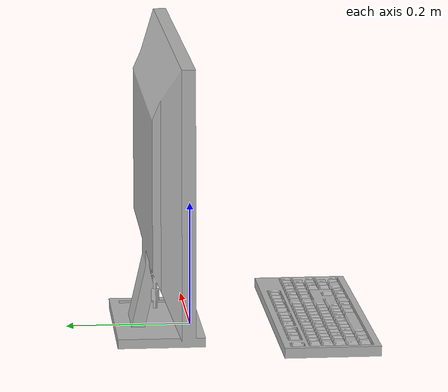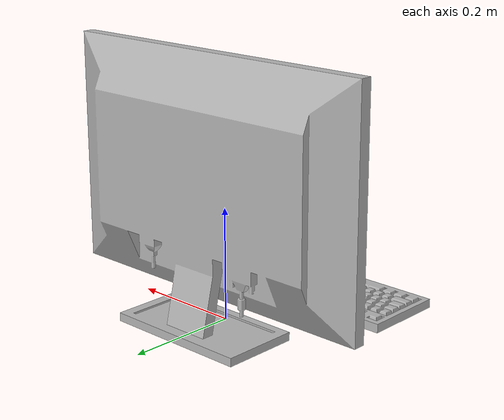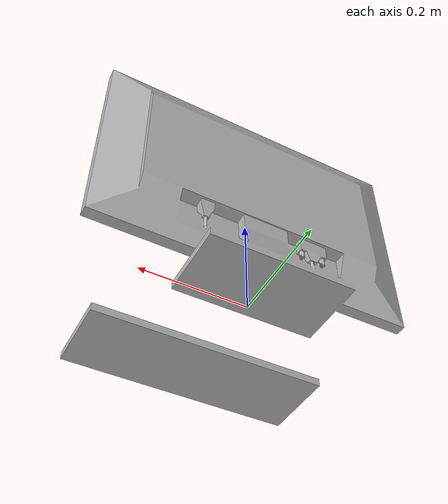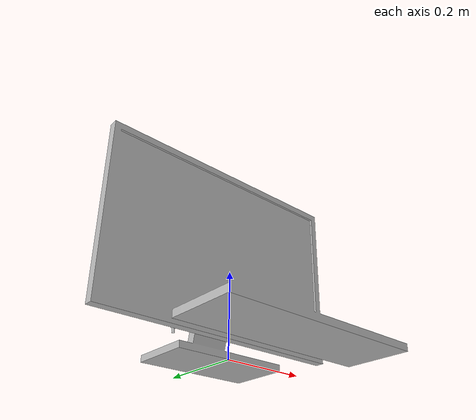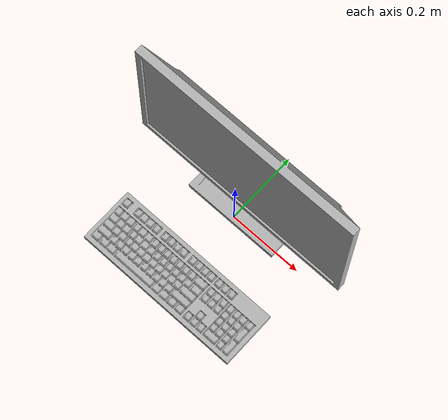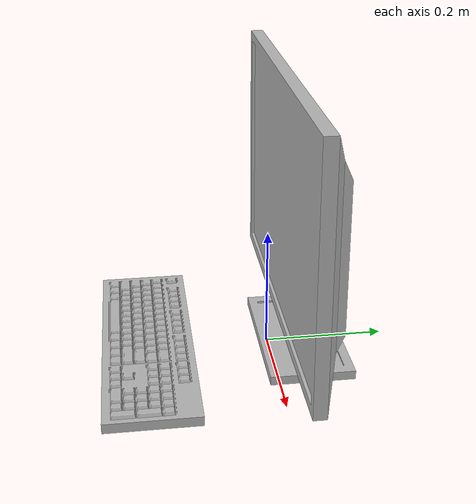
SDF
<?xml version='1.0'?>
<sdf version="1.4">
<model name="lcd_monitor">
  <pose>0 0 0  0 0 0</pose>
  <static>true</static>
    <link name="link">

      <collision name="collision">
        <geometry>
          <mesh><uri>model://lcd_monitor/model.dae</uri></mesh>
        </geometry>
      </collision>

      <visual name="visual">
        <geometry>
          <mesh><uri>model://lcd_monitor/model.dae</uri></mesh>
        </geometry>
      </visual>
    </link>
  </model>
</sdf>
